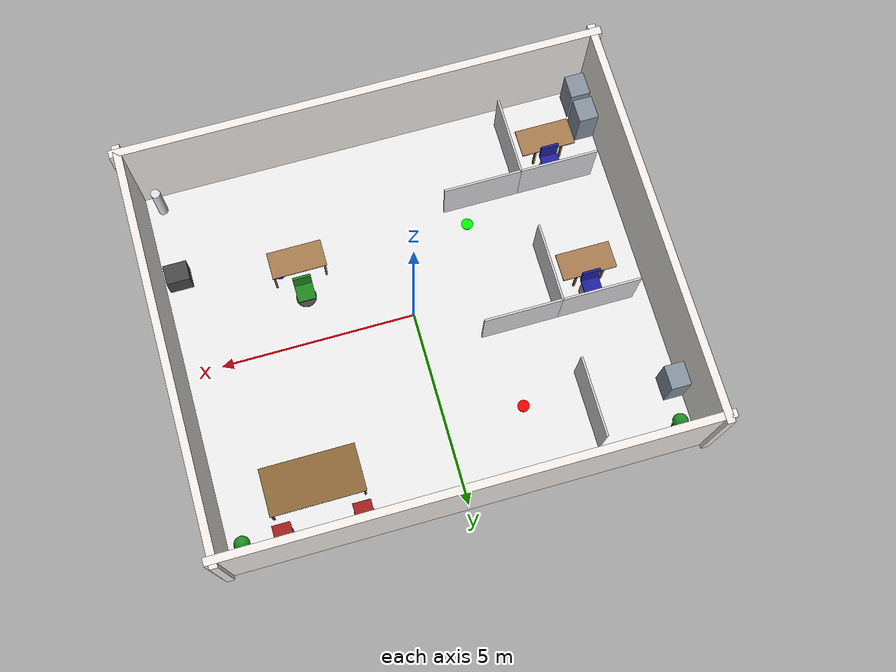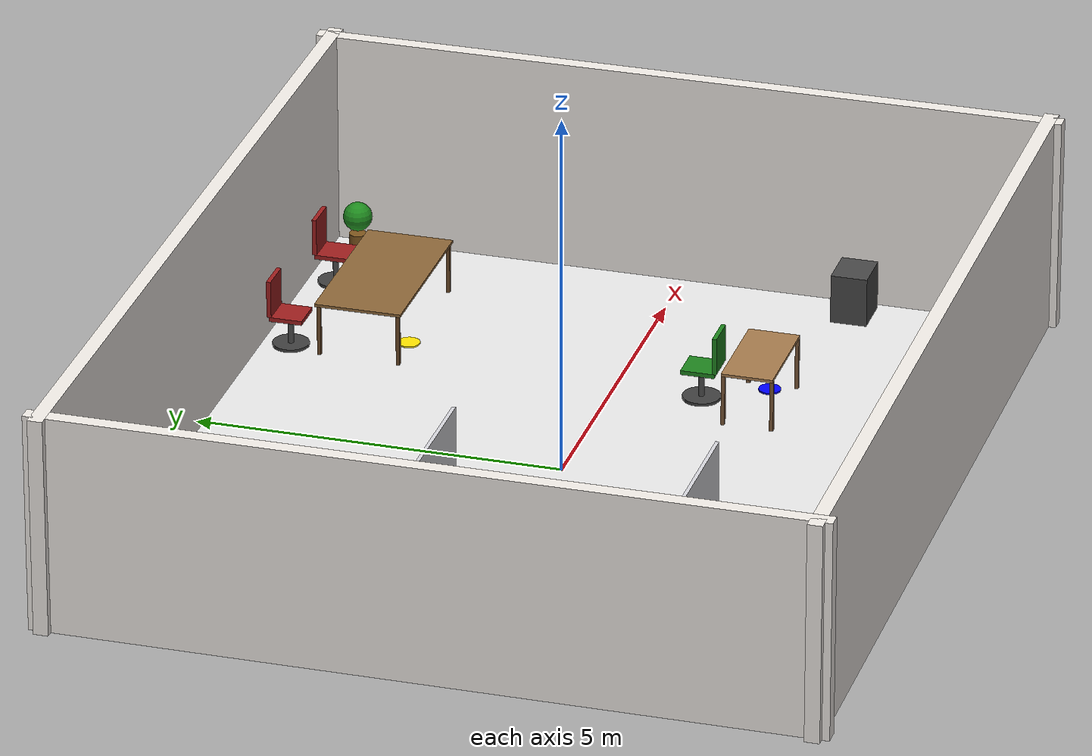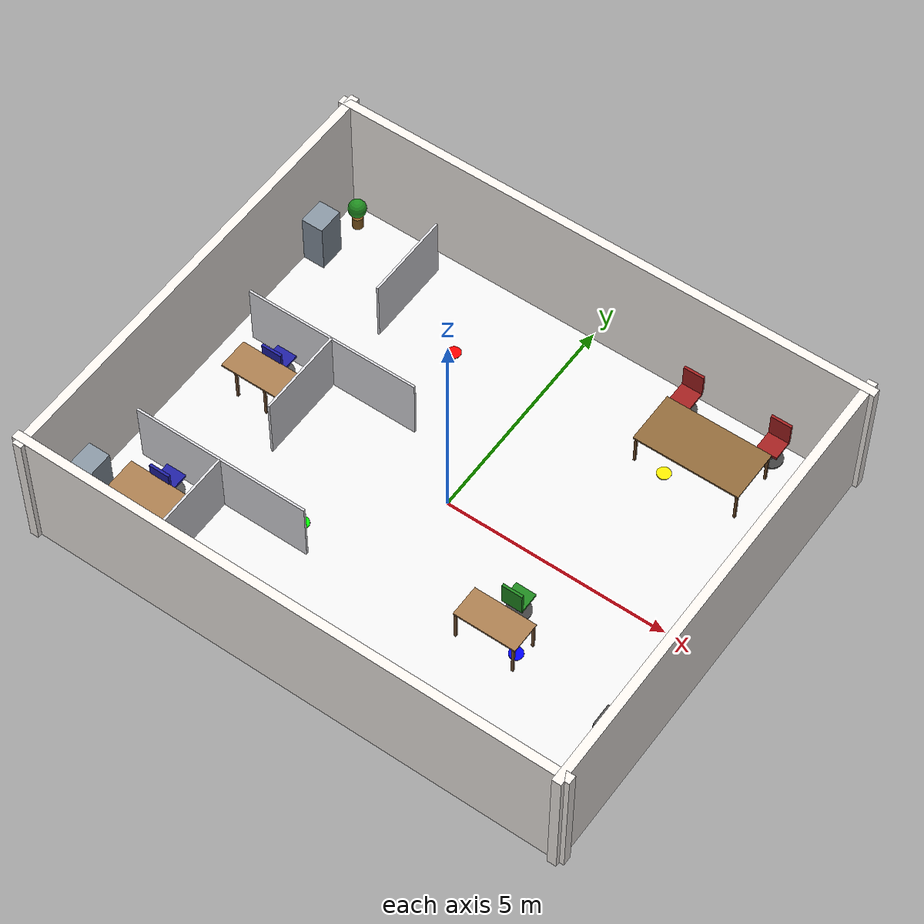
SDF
<?xml version="1.0" ?>
<sdf version="1.6">
  <world name="empty">

    <!-- ── gz-sim8 (Gazebo Harmonic) plugins ─────────────────────────── -->
    <plugin filename="gz-sim-physics-system"
            name="gz::sim::systems::Physics"/>
    <plugin filename="gz-sim-user-commands-system"
            name="gz::sim::systems::UserCommands"/>
    <plugin filename="gz-sim-scene-broadcaster-system"
            name="gz::sim::systems::SceneBroadcaster"/>
    <plugin filename="gz-sim-imu-system"
            name="gz::sim::systems::Imu"/>
    <plugin filename="gz-sim-sensors-system"
            name="gz::sim::systems::Sensors">
      <render_engine>ogre2</render_engine>
    </plugin>

    <physics name="default_physics" type="ignored">
      <max_step_size>0.001</max_step_size>
      <real_time_factor>1</real_time_factor>
    </physics>

    <!-- ── Lighting (bright office) ───────────────────────────────────── -->
    <light name="sun" type="directional">
      <cast_shadows>true</cast_shadows>
      <pose>0 0 15 0 -0.3 0.5</pose>
      <diffuse>1.0 1.0 0.95 1</diffuse>
      <specular>0.3 0.3 0.3 1</specular>
      <direction>-0.3 0.2 -0.9</direction>
    </light>
    <light name="office_fill" type="directional">
      <cast_shadows>false</cast_shadows>
      <pose>0 0 6 0 0 0</pose>
      <diffuse>0.6 0.6 0.65 1</diffuse>
      <specular>0.05 0.05 0.05 1</specular>
      <direction>0 0 -1</direction>
    </light>

    <!--  FLOOR  (12 × 10 m light tile finish)                          -->
    <model name="floor">
      <static>true</static><pose>0 0 0 0 0 0</pose>
      <link name="link">
        <collision name="col"><geometry><box><size>12 10 0.02</size></box></geometry></collision>
        <visual name="vis">
          <geometry><box><size>12 10 0.02</size></box></geometry>
          <material><ambient>0.88 0.88 0.88 1</ambient><diffuse>0.92 0.92 0.92 1</diffuse></material>
        </visual>
      </link>
    </model>

    <!--  WALLS  (height 3 m — standard office ceiling)                 -->
    <model name="wall_north">
      <static>true</static><pose>0 5.0 1.5 0 0 0</pose>
      <link name="link">
        <collision name="col"><geometry><box><size>12.4 0.2 3.0</size></box></geometry></collision>
        <visual name="vis"><geometry><box><size>12.4 0.2 3.0</size></box></geometry>
          <material><ambient>0.92 0.90 0.88 1</ambient><diffuse>0.95 0.93 0.91 1</diffuse></material></visual>
      </link>
    </model>
    <model name="wall_south">
      <static>true</static><pose>0 -5.0 1.5 0 0 0</pose>
      <link name="link">
        <collision name="col"><geometry><box><size>12.4 0.2 3.0</size></box></geometry></collision>
        <visual name="vis"><geometry><box><size>12.4 0.2 3.0</size></box></geometry>
          <material><ambient>0.92 0.90 0.88 1</ambient><diffuse>0.95 0.93 0.91 1</diffuse></material></visual>
      </link>
    </model>
    <model name="wall_east">
      <static>true</static><pose>6.0 0 1.5 0 0 0</pose>
      <link name="link">
        <collision name="col"><geometry><box><size>0.2 10.4 3.0</size></box></geometry></collision>
        <visual name="vis"><geometry><box><size>0.2 10.4 3.0</size></box></geometry>
          <material><ambient>0.92 0.90 0.88 1</ambient><diffuse>0.95 0.93 0.91 1</diffuse></material></visual>
      </link>
    </model>
    <model name="wall_west">
      <static>true</static><pose>-6.0 0 1.5 0 0 0</pose>
      <link name="link">
        <collision name="col"><geometry><box><size>0.2 10.4 3.0</size></box></geometry></collision>
        <visual name="vis"><geometry><box><size>0.2 10.4 3.0</size></box></geometry>
          <material><ambient>0.92 0.90 0.88 1</ambient><diffuse>0.95 0.93 0.91 1</diffuse></material></visual>
      </link>
    </model>

    <!--  CUBICLE DIVIDER PANELS  (0.05 × 2.0 × 1.5 m)                 -->
    <!--  Full height from floor → LiDAR at 0.2 m detects bottom ✓     -->
    <!-- Row of back panels running N-S (face the east-west corridor) -->
    <model name="div_back1"><static>true</static><pose>-3.5 -3.5 0.75 0 0 0</pose>
      <link name="l"><collision name="c"><geometry><box><size>0.05 2.00 1.50</size></box></geometry></collision>
        <visual name="v"><geometry><box><size>0.05 2.00 1.50</size></box></geometry>
          <material><ambient>0.80 0.80 0.82 1</ambient><diffuse>0.85 0.85 0.87 1</diffuse></material></visual></link></model>
    <model name="div_back2"><static>true</static><pose>-3.5  0.0 0.75 0 0 0</pose>
      <link name="l"><collision name="c"><geometry><box><size>0.05 2.00 1.50</size></box></geometry></collision>
        <visual name="v"><geometry><box><size>0.05 2.00 1.50</size></box></geometry>
          <material><ambient>0.80 0.80 0.82 1</ambient><diffuse>0.85 0.85 0.87 1</diffuse></material></visual></link></model>
    <model name="div_back3"><static>true</static><pose>-3.5  3.5 0.75 0 0 0</pose>
      <link name="l"><collision name="c"><geometry><box><size>0.05 2.00 1.50</size></box></geometry></collision>
        <visual name="v"><geometry><box><size>0.05 2.00 1.50</size></box></geometry>
          <material><ambient>0.80 0.80 0.82 1</ambient><diffuse>0.85 0.85 0.87 1</diffuse></material></visual></link></model>
    <!-- Side panels running E-W (divide individual cubicles) -->
    <model name="div_side1"><static>true</static><pose>-2.5 -2.5 0.75 0 0 1.5708</pose>
      <link name="l"><collision name="c"><geometry><box><size>0.05 2.00 1.50</size></box></geometry></collision>
        <visual name="v"><geometry><box><size>0.05 2.00 1.50</size></box></geometry>
          <material><ambient>0.80 0.80 0.82 1</ambient><diffuse>0.85 0.85 0.87 1</diffuse></material></visual></link></model>
    <model name="div_side2"><static>true</static><pose>-2.5  1.0 0.75 0 0 1.5708</pose>
      <link name="l"><collision name="c"><geometry><box><size>0.05 2.00 1.50</size></box></geometry></collision>
        <visual name="v"><geometry><box><size>0.05 2.00 1.50</size></box></geometry>
          <material><ambient>0.80 0.80 0.82 1</ambient><diffuse>0.85 0.85 0.87 1</diffuse></material></visual></link></model>
    <model name="div_side3"><static>true</static><pose>-4.5 -2.5 0.75 0 0 1.5708</pose>
      <link name="l"><collision name="c"><geometry><box><size>0.05 2.00 1.50</size></box></geometry></collision>
        <visual name="v"><geometry><box><size>0.05 2.00 1.50</size></box></geometry>
          <material><ambient>0.80 0.80 0.82 1</ambient><diffuse>0.85 0.85 0.87 1</diffuse></material></visual></link></model>
    <model name="div_side4"><static>true</static><pose>-4.5  1.0 0.75 0 0 1.5708</pose>
      <link name="l"><collision name="c"><geometry><box><size>0.05 2.00 1.50</size></box></geometry></collision>
        <visual name="v"><geometry><box><size>0.05 2.00 1.50</size></box></geometry>
          <material><ambient>0.80 0.80 0.82 1</ambient><diffuse>0.85 0.85 0.87 1</diffuse></material></visual></link></model>

    <!--  WORKSTATION DESKS (4 desks in cubicle zone)                   -->
    <!--  4 legs 0.05×0.05×0.73 m → 0 to 0.73 m → LiDAR detects ✓    -->
    <!--  Desk top 1.4×0.7×0.04 m at z=0.75 m                         -->
    <!-- Desk 1 -->
    <model name="desk1_top"><static>true</static><pose>-4.5 -3.5 0.75 0 0 0</pose>
      <link name="l"><collision name="c"><geometry><box><size>1.40 0.70 0.04</size></box></geometry></collision>
        <visual name="v"><geometry><box><size>1.40 0.70 0.04</size></box></geometry>
          <material><ambient>0.55 0.40 0.25 1</ambient><diffuse>0.65 0.48 0.30 1</diffuse></material></visual></link></model>
    <model name="desk1_legFL"><static>true</static><pose>-4.15 -3.17 0.365 0 0 0</pose>
      <link name="l"><collision name="c"><geometry><box><size>0.05 0.05 0.73</size></box></geometry></collision>
        <visual name="v"><geometry><box><size>0.05 0.05 0.73</size></box></geometry>
          <material><ambient>0.40 0.28 0.18 1</ambient><diffuse>0.48 0.34 0.22 1</diffuse></material></visual></link></model>
    <model name="desk1_legFR"><static>true</static><pose>-4.85 -3.17 0.365 0 0 0</pose>
      <link name="l"><collision name="c"><geometry><box><size>0.05 0.05 0.73</size></box></geometry></collision>
        <visual name="v"><geometry><box><size>0.05 0.05 0.73</size></box></geometry>
          <material><ambient>0.40 0.28 0.18 1</ambient><diffuse>0.48 0.34 0.22 1</diffuse></material></visual></link></model>
    <model name="desk1_legBL"><static>true</static><pose>-4.15 -3.83 0.365 0 0 0</pose>
      <link name="l"><collision name="c"><geometry><box><size>0.05 0.05 0.73</size></box></geometry></collision>
        <visual name="v"><geometry><box><size>0.05 0.05 0.73</size></box></geometry>
          <material><ambient>0.40 0.28 0.18 1</ambient><diffuse>0.48 0.34 0.22 1</diffuse></material></visual></link></model>
    <model name="desk1_legBR"><static>true</static><pose>-4.85 -3.83 0.365 0 0 0</pose>
      <link name="l"><collision name="c"><geometry><box><size>0.05 0.05 0.73</size></box></geometry></collision>
        <visual name="v"><geometry><box><size>0.05 0.05 0.73</size></box></geometry>
          <material><ambient>0.40 0.28 0.18 1</ambient><diffuse>0.48 0.34 0.22 1</diffuse></material></visual></link></model>
    <!-- Desk 2 -->
    <model name="desk2_top"><static>true</static><pose>-4.5 0.0 0.75 0 0 0</pose>
      <link name="l"><collision name="c"><geometry><box><size>1.40 0.70 0.04</size></box></geometry></collision>
        <visual name="v"><geometry><box><size>1.40 0.70 0.04</size></box></geometry>
          <material><ambient>0.55 0.40 0.25 1</ambient><diffuse>0.65 0.48 0.30 1</diffuse></material></visual></link></model>
    <model name="desk2_legFL"><static>true</static><pose>-4.15 0.33 0.365 0 0 0</pose>
      <link name="l"><collision name="c"><geometry><box><size>0.05 0.05 0.73</size></box></geometry></collision>
        <visual name="v"><geometry><box><size>0.05 0.05 0.73</size></box></geometry>
          <material><ambient>0.40 0.28 0.18 1</ambient><diffuse>0.48 0.34 0.22 1</diffuse></material></visual></link></model>
    <model name="desk2_legFR"><static>true</static><pose>-4.85 0.33 0.365 0 0 0</pose>
      <link name="l"><collision name="c"><geometry><box><size>0.05 0.05 0.73</size></box></geometry></collision>
        <visual name="v"><geometry><box><size>0.05 0.05 0.73</size></box></geometry>
          <material><ambient>0.40 0.28 0.18 1</ambient><diffuse>0.48 0.34 0.22 1</diffuse></material></visual></link></model>
    <model name="desk2_legBL"><static>true</static><pose>-4.15 -0.33 0.365 0 0 0</pose>
      <link name="l"><collision name="c"><geometry><box><size>0.05 0.05 0.73</size></box></geometry></collision>
        <visual name="v"><geometry><box><size>0.05 0.05 0.73</size></box></geometry>
          <material><ambient>0.40 0.28 0.18 1</ambient><diffuse>0.48 0.34 0.22 1</diffuse></material></visual></link></model>
    <model name="desk2_legBR"><static>true</static><pose>-4.85 -0.33 0.365 0 0 0</pose>
      <link name="l"><collision name="c"><geometry><box><size>0.05 0.05 0.73</size></box></geometry></collision>
        <visual name="v"><geometry><box><size>0.05 0.05 0.73</size></box></geometry>
          <material><ambient>0.40 0.28 0.18 1</ambient><diffuse>0.48 0.34 0.22 1</diffuse></material></visual></link></model>

    <!--  OFFICE CHAIRS (column + base)  column 0 to 0.44 m → detected -->
    <model name="chair1_col"><static>true</static><pose>-4.5 -2.9 0.22 0 0 0</pose>
      <link name="l"><collision name="c"><geometry><cylinder><radius>0.04</radius><length>0.44</length></cylinder></geometry></collision>
        <visual name="v"><geometry><cylinder><radius>0.04</radius><length>0.44</length></cylinder></geometry>
          <material><ambient>0.25 0.25 0.25 1</ambient><diffuse>0.35 0.35 0.35 1</diffuse></material></visual></link></model>
    <model name="chair1_base"><static>true</static><pose>-4.5 -2.9 0.04 0 0 0</pose>
      <link name="l"><collision name="c"><geometry><cylinder><radius>0.28</radius><length>0.04</length></cylinder></geometry></collision>
        <visual name="v"><geometry><cylinder><radius>0.28</radius><length>0.04</length></cylinder></geometry>
          <material><ambient>0.20 0.20 0.20 1</ambient><diffuse>0.30 0.30 0.30 1</diffuse></material></visual></link></model>
    <model name="chair1_seat"><static>true</static><pose>-4.5 -2.9 0.47 0 0 0</pose>
      <link name="l"><collision name="c"><geometry><box><size>0.46 0.46 0.06</size></box></geometry></collision>
        <visual name="v"><geometry><box><size>0.46 0.46 0.06</size></box></geometry>
          <material><ambient>0.10 0.10 0.50 1</ambient><diffuse>0.12 0.12 0.62 1</diffuse></material></visual></link></model>
    <model name="chair1_back"><static>true</static><pose>-4.5 -3.13 0.76 0 0 0</pose>
      <link name="l"><collision name="c"><geometry><box><size>0.46 0.06 0.52</size></box></geometry></collision>
        <visual name="v"><geometry><box><size>0.46 0.06 0.52</size></box></geometry>
          <material><ambient>0.10 0.10 0.50 1</ambient><diffuse>0.12 0.12 0.62 1</diffuse></material></visual></link></model>
    <model name="chair2_col"><static>true</static><pose>-4.5  0.6 0.22 0 0 0</pose>
      <link name="l"><collision name="c"><geometry><cylinder><radius>0.04</radius><length>0.44</length></cylinder></geometry></collision>
        <visual name="v"><geometry><cylinder><radius>0.04</radius><length>0.44</length></cylinder></geometry>
          <material><ambient>0.25 0.25 0.25 1</ambient><diffuse>0.35 0.35 0.35 1</diffuse></material></visual></link></model>
    <model name="chair2_base"><static>true</static><pose>-4.5  0.6 0.04 0 0 0</pose>
      <link name="l"><collision name="c"><geometry><cylinder><radius>0.28</radius><length>0.04</length></cylinder></geometry></collision>
        <visual name="v"><geometry><cylinder><radius>0.28</radius><length>0.04</length></cylinder></geometry>
          <material><ambient>0.20 0.20 0.20 1</ambient><diffuse>0.30 0.30 0.30 1</diffuse></material></visual></link></model>
    <model name="chair2_seat"><static>true</static><pose>-4.5 0.6 0.47 0 0 0</pose>
      <link name="l"><collision name="c"><geometry><box><size>0.46 0.46 0.06</size></box></geometry></collision>
        <visual name="v"><geometry><box><size>0.46 0.46 0.06</size></box></geometry>
          <material><ambient>0.10 0.10 0.50 1</ambient><diffuse>0.12 0.12 0.62 1</diffuse></material></visual></link></model>
    <model name="chair2_back"><static>true</static><pose>-4.5 0.37 0.76 0 0 0</pose>
      <link name="l"><collision name="c"><geometry><box><size>0.46 0.06 0.52</size></box></geometry></collision>
        <visual name="v"><geometry><box><size>0.46 0.06 0.52</size></box></geometry>
          <material><ambient>0.10 0.10 0.50 1</ambient><diffuse>0.12 0.12 0.62 1</diffuse></material></visual></link></model>

    <!--  FILING CABINETS (0.5×0.6×1.2 m, centre z=0.6) → detected ✓  -->
    <model name="cabinet1"><static>true</static><pose>-5.65 -4.5 0.6 0 0 0</pose>
      <link name="l"><collision name="c"><geometry><box><size>0.50 0.60 1.20</size></box></geometry></collision>
        <visual name="v"><geometry><box><size>0.50 0.60 1.20</size></box></geometry>
          <material><ambient>0.45 0.50 0.55 1</ambient><diffuse>0.52 0.57 0.62 1</diffuse></material></visual></link></model>
    <model name="cabinet2"><static>true</static><pose>-5.65 -3.8 0.6 0 0 0</pose>
      <link name="l"><collision name="c"><geometry><box><size>0.50 0.60 1.20</size></box></geometry></collision>
        <visual name="v"><geometry><box><size>0.50 0.60 1.20</size></box></geometry>
          <material><ambient>0.45 0.50 0.55 1</ambient><diffuse>0.52 0.57 0.62 1</diffuse></material></visual></link></model>
    <model name="cabinet3"><static>true</static><pose>-5.65  3.5 0.6 0 0 0</pose>
      <link name="l"><collision name="c"><geometry><box><size>0.50 0.60 1.20</size></box></geometry></collision>
        <visual name="v"><geometry><box><size>0.50 0.60 1.20</size></box></geometry>
          <material><ambient>0.45 0.50 0.55 1</ambient><diffuse>0.52 0.57 0.62 1</diffuse></material></visual></link></model>

    <!--  MEETING TABLE (right zone, 2.4×1.2×0.04 m top + 4 legs)      -->
    <model name="mtg_top"><static>true</static><pose>3.5 3.5 0.75 0 0 0</pose>
      <link name="l"><collision name="c"><geometry><box><size>2.40 1.20 0.04</size></box></geometry></collision>
        <visual name="v"><geometry><box><size>2.40 1.20 0.04</size></box></geometry>
          <material><ambient>0.45 0.32 0.18 1</ambient><diffuse>0.55 0.40 0.22 1</diffuse></material></visual></link></model>
    <model name="mtg_legFL"><static>true</static><pose>4.65 4.05 0.365 0 0 0</pose>
      <link name="l"><collision name="c"><geometry><box><size>0.05 0.05 0.73</size></box></geometry></collision>
        <visual name="v"><geometry><box><size>0.05 0.05 0.73</size></box></geometry>
          <material><ambient>0.35 0.22 0.12 1</ambient><diffuse>0.42 0.28 0.15 1</diffuse></material></visual></link></model>
    <model name="mtg_legFR"><static>true</static><pose>2.35 4.05 0.365 0 0 0</pose>
      <link name="l"><collision name="c"><geometry><box><size>0.05 0.05 0.73</size></box></geometry></collision>
        <visual name="v"><geometry><box><size>0.05 0.05 0.73</size></box></geometry>
          <material><ambient>0.35 0.22 0.12 1</ambient><diffuse>0.42 0.28 0.15 1</diffuse></material></visual></link></model>
    <model name="mtg_legBL"><static>true</static><pose>4.65 2.95 0.365 0 0 0</pose>
      <link name="l"><collision name="c"><geometry><box><size>0.05 0.05 0.73</size></box></geometry></collision>
        <visual name="v"><geometry><box><size>0.05 0.05 0.73</size></box></geometry>
          <material><ambient>0.35 0.22 0.12 1</ambient><diffuse>0.42 0.28 0.15 1</diffuse></material></visual></link></model>
    <model name="mtg_legBR"><static>true</static><pose>2.35 2.95 0.365 0 0 0</pose>
      <link name="l"><collision name="c"><geometry><box><size>0.05 0.05 0.73</size></box></geometry></collision>
        <visual name="v"><geometry><box><size>0.05 0.05 0.73</size></box></geometry>
          <material><ambient>0.35 0.22 0.12 1</ambient><diffuse>0.42 0.28 0.15 1</diffuse></material></visual></link></model>
    <!-- Meeting chairs (column + base, 4 around table) -->
    <model name="mtg_chair1_col"><static>true</static><pose>4.5 4.5 0.22 0 0 0</pose>
      <link name="l"><collision name="c"><geometry><cylinder><radius>0.04</radius><length>0.44</length></cylinder></geometry></collision>
        <visual name="v"><geometry><cylinder><radius>0.04</radius><length>0.44</length></cylinder></geometry>
          <material><ambient>0.2 0.2 0.2 1</ambient><diffuse>0.3 0.3 0.3 1</diffuse></material></visual></link></model>
    <model name="mtg_chair1_base"><static>true</static><pose>4.5 4.5 0.04 0 0 0</pose>
      <link name="l"><collision name="c"><geometry><cylinder><radius>0.25</radius><length>0.04</length></cylinder></geometry></collision>
        <visual name="v"><geometry><cylinder><radius>0.25</radius><length>0.04</length></cylinder></geometry>
          <material><ambient>0.15 0.15 0.15 1</ambient><diffuse>0.25 0.25 0.25 1</diffuse></material></visual></link></model>
    <model name="mtg_chair1_seat"><static>true</static><pose>4.5 4.5 0.47 0 0 0</pose>
      <link name="l"><collision name="c"><geometry><box><size>0.46 0.46 0.06</size></box></geometry></collision>
        <visual name="v"><geometry><box><size>0.46 0.46 0.06</size></box></geometry>
          <material><ambient>0.50 0.10 0.10 1</ambient><diffuse>0.62 0.12 0.12 1</diffuse></material></visual></link></model>
    <model name="mtg_chair1_back"><static>true</static><pose>4.5 4.73 0.76 0 0 0</pose>
      <link name="l"><collision name="c"><geometry><box><size>0.46 0.06 0.52</size></box></geometry></collision>
        <visual name="v"><geometry><box><size>0.46 0.06 0.52</size></box></geometry>
          <material><ambient>0.50 0.10 0.10 1</ambient><diffuse>0.62 0.12 0.12 1</diffuse></material></visual></link></model>
    <model name="mtg_chair2_col"><static>true</static><pose>2.5 4.5 0.22 0 0 0</pose>
      <link name="l"><collision name="c"><geometry><cylinder><radius>0.04</radius><length>0.44</length></cylinder></geometry></collision>
        <visual name="v"><geometry><cylinder><radius>0.04</radius><length>0.44</length></cylinder></geometry>
          <material><ambient>0.2 0.2 0.2 1</ambient><diffuse>0.3 0.3 0.3 1</diffuse></material></visual></link></model>
    <model name="mtg_chair2_base"><static>true</static><pose>2.5 4.5 0.04 0 0 0</pose>
      <link name="l"><collision name="c"><geometry><cylinder><radius>0.25</radius><length>0.04</length></cylinder></geometry></collision>
        <visual name="v"><geometry><cylinder><radius>0.25</radius><length>0.04</length></cylinder></geometry>
          <material><ambient>0.15 0.15 0.15 1</ambient><diffuse>0.25 0.25 0.25 1</diffuse></material></visual></link></model>
    <model name="mtg_chair2_seat"><static>true</static><pose>2.5 4.5 0.47 0 0 0</pose>
      <link name="l"><collision name="c"><geometry><box><size>0.46 0.46 0.06</size></box></geometry></collision>
        <visual name="v"><geometry><box><size>0.46 0.46 0.06</size></box></geometry>
          <material><ambient>0.50 0.10 0.10 1</ambient><diffuse>0.62 0.12 0.12 1</diffuse></material></visual></link></model>
    <model name="mtg_chair2_back"><static>true</static><pose>2.5 4.73 0.76 0 0 0</pose>
      <link name="l"><collision name="c"><geometry><box><size>0.46 0.06 0.52</size></box></geometry></collision>
        <visual name="v"><geometry><box><size>0.46 0.06 0.52</size></box></geometry>
          <material><ambient>0.50 0.10 0.10 1</ambient><diffuse>0.62 0.12 0.12 1</diffuse></material></visual></link></model>

    <!--  INDIVIDUAL DESKS (open area, right side)                      -->
    <model name="odesk1_top"><static>true</static><pose>2.5 -2.0 0.75 0 0 0</pose>
      <link name="l"><collision name="c"><geometry><box><size>1.40 0.70 0.04</size></box></geometry></collision>
        <visual name="v"><geometry><box><size>1.40 0.70 0.04</size></box></geometry>
          <material><ambient>0.55 0.40 0.25 1</ambient><diffuse>0.65 0.48 0.30 1</diffuse></material></visual></link></model>
    <model name="odesk1_legFL"><static>true</static><pose>3.15 -1.67 0.365 0 0 0</pose>
      <link name="l"><collision name="c"><geometry><box><size>0.05 0.05 0.73</size></box></geometry></collision>
        <visual name="v"><geometry><box><size>0.05 0.05 0.73</size></box></geometry>
          <material><ambient>0.40 0.28 0.18 1</ambient><diffuse>0.48 0.34 0.22 1</diffuse></material></visual></link></model>
    <model name="odesk1_legFR"><static>true</static><pose>1.85 -1.67 0.365 0 0 0</pose>
      <link name="l"><collision name="c"><geometry><box><size>0.05 0.05 0.73</size></box></geometry></collision>
        <visual name="v"><geometry><box><size>0.05 0.05 0.73</size></box></geometry>
          <material><ambient>0.40 0.28 0.18 1</ambient><diffuse>0.48 0.34 0.22 1</diffuse></material></visual></link></model>
    <model name="odesk1_legBL"><static>true</static><pose>3.15 -2.33 0.365 0 0 0</pose>
      <link name="l"><collision name="c"><geometry><box><size>0.05 0.05 0.73</size></box></geometry></collision>
        <visual name="v"><geometry><box><size>0.05 0.05 0.73</size></box></geometry>
          <material><ambient>0.40 0.28 0.18 1</ambient><diffuse>0.48 0.34 0.22 1</diffuse></material></visual></link></model>
    <model name="odesk1_legBR"><static>true</static><pose>1.85 -2.33 0.365 0 0 0</pose>
      <link name="l"><collision name="c"><geometry><box><size>0.05 0.05 0.73</size></box></geometry></collision>
        <visual name="v"><geometry><box><size>0.05 0.05 0.73</size></box></geometry>
          <material><ambient>0.40 0.28 0.18 1</ambient><diffuse>0.48 0.34 0.22 1</diffuse></material></visual></link></model>
    <!-- Chair for open desk -->
    <model name="odesk1_chair_col"><static>true</static><pose>2.5 -1.2 0.22 0 0 0</pose>
      <link name="l"><collision name="c"><geometry><cylinder><radius>0.04</radius><length>0.44</length></cylinder></geometry></collision>
        <visual name="v"><geometry><cylinder><radius>0.04</radius><length>0.44</length></cylinder></geometry>
          <material><ambient>0.2 0.2 0.2 1</ambient><diffuse>0.3 0.3 0.3 1</diffuse></material></visual></link></model>
    <model name="odesk1_chair_base"><static>true</static><pose>2.5 -1.2 0.04 0 0 0</pose>
      <link name="l"><collision name="c"><geometry><cylinder><radius>0.26</radius><length>0.04</length></cylinder></geometry></collision>
        <visual name="v"><geometry><cylinder><radius>0.26</radius><length>0.04</length></cylinder></geometry>
          <material><ambient>0.15 0.15 0.15 1</ambient><diffuse>0.25 0.25 0.25 1</diffuse></material></visual></link></model>
    <model name="odesk1_chair_seat"><static>true</static><pose>2.5 -1.2 0.47 0 0 0</pose>
      <link name="l"><collision name="c"><geometry><box><size>0.46 0.46 0.06</size></box></geometry></collision>
        <visual name="v"><geometry><box><size>0.46 0.46 0.06</size></box></geometry>
          <material><ambient>0.10 0.40 0.10 1</ambient><diffuse>0.12 0.52 0.12 1</diffuse></material></visual></link></model>
    <model name="odesk1_chair_back"><static>true</static><pose>2.5 -1.43 0.76 0 0 0</pose>
      <link name="l"><collision name="c"><geometry><box><size>0.46 0.06 0.52</size></box></geometry></collision>
        <visual name="v"><geometry><box><size>0.46 0.06 0.52</size></box></geometry>
          <material><ambient>0.10 0.40 0.10 1</ambient><diffuse>0.12 0.52 0.12 1</diffuse></material></visual></link></model>

    <!--  AMENITIES                                                      -->
    <!-- Water cooler: cylinder r=0.12 m, h=1.2 m → 0 to 1.2 m ✓ -->
    <model name="water_cooler"><static>true</static><pose>5.5 -4.5 0.6 0 0 0</pose>
      <link name="l"><collision name="c"><geometry><cylinder><radius>0.12</radius><length>1.20</length></cylinder></geometry></collision>
        <visual name="v"><geometry><cylinder><radius>0.12</radius><length>1.20</length></cylinder></geometry>
          <material><ambient>0.80 0.80 0.85 1</ambient><diffuse>0.88 0.88 0.92 1</diffuse></material></visual></link></model>
    <!-- Printer / copier: box 0.6×0.5×0.7 m, z=0.35 → 0 to 0.7 m ✓ -->
    <model name="printer"><static>true</static><pose>5.5 -2.5 0.35 0 0 0</pose>
      <link name="l"><collision name="c"><geometry><box><size>0.60 0.50 0.70</size></box></geometry></collision>
        <visual name="v"><geometry><box><size>0.60 0.50 0.70</size></box></geometry>
          <material><ambient>0.20 0.20 0.20 1</ambient><diffuse>0.28 0.28 0.28 1</diffuse></material></visual></link></model>
    <!-- Plants: pot cylinder r=0.12 m, h=0.3 m → 0 to 0.3 m; foliage r=0.18 m above -->
    <model name="plant1_pot"><static>true</static><pose>5.5 4.5 0.15 0 0 0</pose>
      <link name="l"><collision name="c"><geometry><cylinder><radius>0.12</radius><length>0.30</length></cylinder></geometry></collision>
        <visual name="v"><geometry><cylinder><radius>0.12</radius><length>0.30</length></cylinder></geometry>
          <material><ambient>0.42 0.28 0.10 1</ambient><diffuse>0.50 0.34 0.12 1</diffuse></material></visual></link></model>
    <model name="plant1_foliage"><static>true</static><pose>5.5 4.5 0.55 0 0 0</pose>
      <link name="l"><collision name="c"><geometry><sphere><radius>0.20</radius></sphere></geometry></collision>
        <visual name="v"><geometry><sphere><radius>0.20</radius></sphere></geometry>
          <material><ambient>0.10 0.45 0.10 1</ambient><diffuse>0.12 0.55 0.12 1</diffuse></material></visual></link></model>
    <model name="plant2_pot"><static>true</static><pose>-5.5 4.5 0.15 0 0 0</pose>
      <link name="l"><collision name="c"><geometry><cylinder><radius>0.12</radius><length>0.30</length></cylinder></geometry></collision>
        <visual name="v"><geometry><cylinder><radius>0.12</radius><length>0.30</length></cylinder></geometry>
          <material><ambient>0.42 0.28 0.10 1</ambient><diffuse>0.50 0.34 0.12 1</diffuse></material></visual></link></model>
    <model name="plant2_foliage"><static>true</static><pose>-5.5 4.5 0.55 0 0 0</pose>
      <link name="l"><collision name="c"><geometry><sphere><radius>0.20</radius></sphere></geometry></collision>
        <visual name="v"><geometry><sphere><radius>0.20</radius></sphere></geometry>
          <material><ambient>0.10 0.45 0.10 1</ambient><diffuse>0.12 0.55 0.12 1</diffuse></material></visual></link></model>

    <!--  FLOOR WAYPOINT MARKERS                                        -->
    <model name="wp_A"><static>true</static><pose>-2.0 -2.0 0.015 0 0 0</pose>
      <link name="l"><collision name="c"><geometry><cylinder><radius>0.15</radius><length>0.03</length></cylinder></geometry></collision>
        <visual name="v"><geometry><cylinder><radius>0.15</radius><length>0.03</length></cylinder></geometry>
          <material><ambient>0 0.8 0 1</ambient><diffuse>0 1.0 0 1</diffuse></material></visual></link></model>
    <model name="wp_B"><static>true</static><pose>3.0 -2.0 0.015 0 0 0</pose>
      <link name="l"><collision name="c"><geometry><cylinder><radius>0.15</radius><length>0.03</length></cylinder></geometry></collision>
        <visual name="v"><geometry><cylinder><radius>0.15</radius><length>0.03</length></cylinder></geometry>
          <material><ambient>0 0 0.9 1</ambient><diffuse>0 0 1.0 1</diffuse></material></visual></link></model>
    <model name="wp_C"><static>true</static><pose>3.0 3.0 0.015 0 0 0</pose>
      <link name="l"><collision name="c"><geometry><cylinder><radius>0.15</radius><length>0.03</length></cylinder></geometry></collision>
        <visual name="v"><geometry><cylinder><radius>0.15</radius><length>0.03</length></cylinder></geometry>
          <material><ambient>0.9 0.8 0 1</ambient><diffuse>1.0 0.9 0 1</diffuse></material></visual></link></model>
    <model name="wp_D"><static>true</static><pose>-2.0 3.0 0.015 0 0 0</pose>
      <link name="l"><collision name="c"><geometry><cylinder><radius>0.15</radius><length>0.03</length></cylinder></geometry></collision>
        <visual name="v"><geometry><cylinder><radius>0.15</radius><length>0.03</length></cylinder></geometry>
          <material><ambient>0.85 0 0 1</ambient><diffuse>1.0 0 0 1</diffuse></material></visual></link></model>

  </world>
</sdf>
